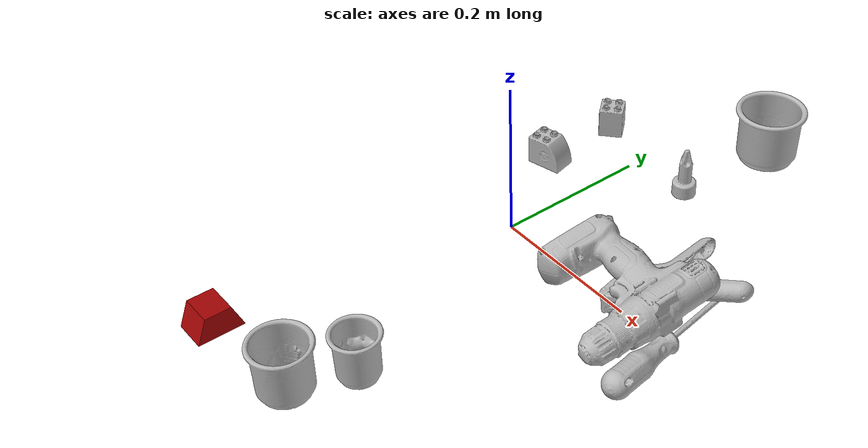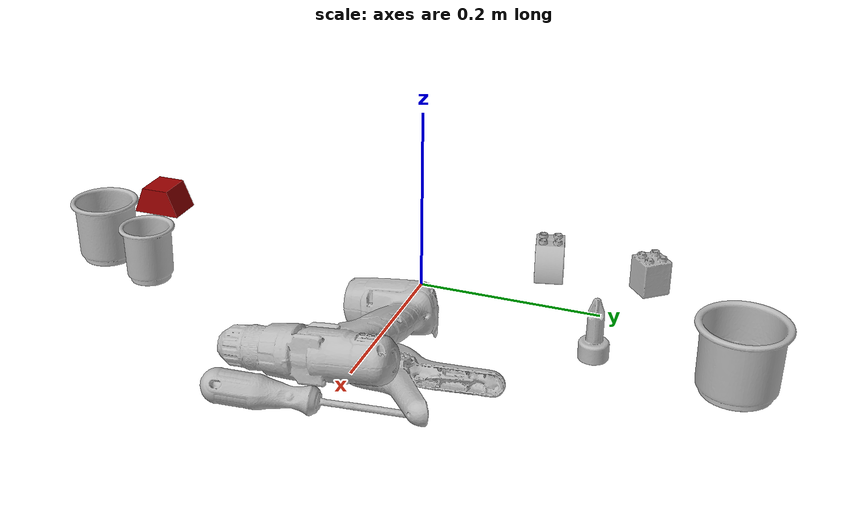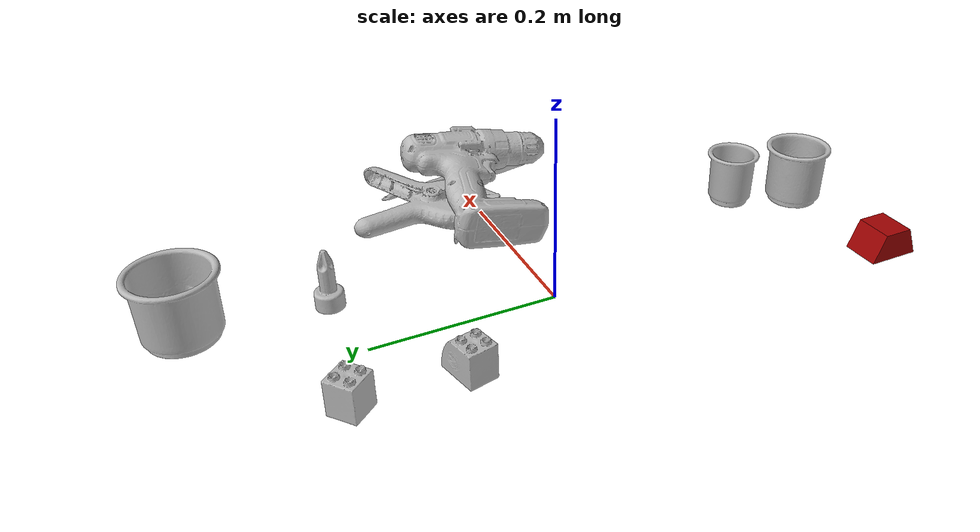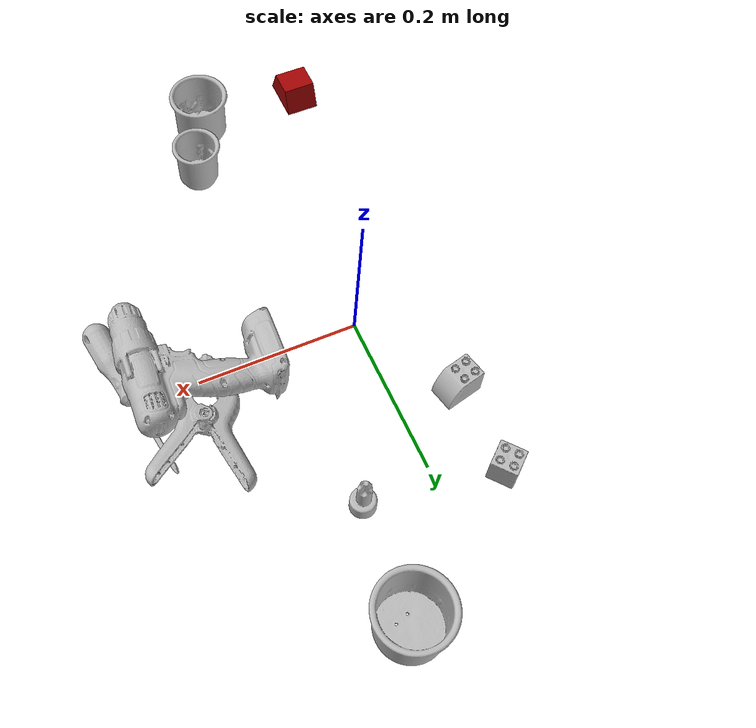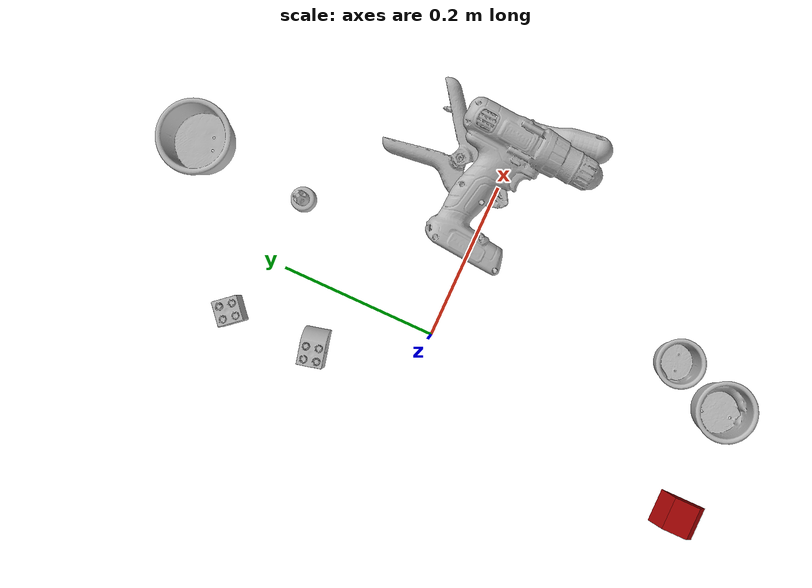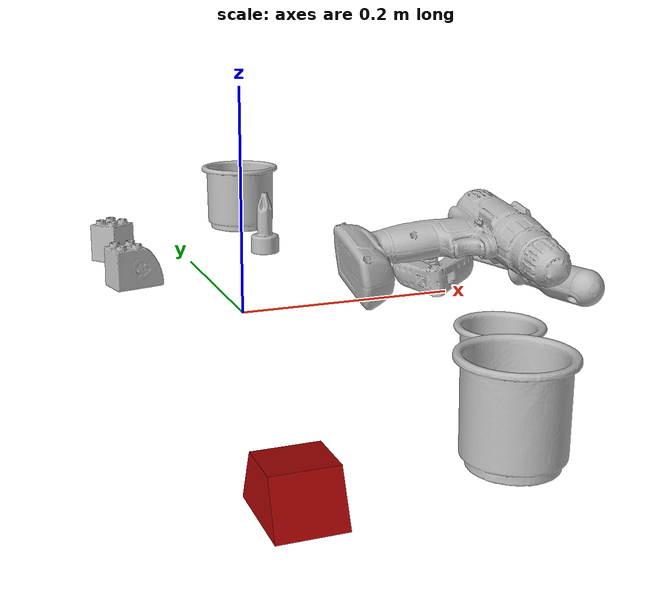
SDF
<sdf version="1.4">
  <world name="default">
    <light name="light1" type="point">
      <pose>0 0 1 0 0 0</pose>
      <diffuse>3 3 3 1</diffuse>
      <specular>3 3 3 1</specular>
    </light>
    <light name="light2" type="point">
      <pose>0 0.5 2 0 0 0</pose>
      <diffuse>1 1 1 1</diffuse>
      <specular>1 1 1 1</specular>
    </light>
    <light name="light3" type="point">
      <pose>0 0.5 2 0 0 0</pose>
      <diffuse>3 3 3 1</diffuse>
      <specular>3 3 3 1</specular>
    </light>
    <scene>
      <ambient>0.7 0.7 0.7</ambient>
    </scene>
    <model name="cup1">
      <link name="link_cup1">
        <collision name="default">
          <geometry>
            <mesh>
              <uri>model://b_cups/collision_meshes/collision.obj</uri>
              <scale>1.0 1.0 1.0</scale>
            </mesh>
          </geometry>
          <surface>
            <friction>
              <ode>
                <mu>0.5</mu>
                <mu2>0.5</mu2>
              </ode>
            </friction>
          <contact>
        <ode>
            <max_vel>0</max_vel>
            <min_depth>0.0001</min_depth>
            <kp>1e8</kp>
        </ode>
    </contact></surface>
        </collision>
        <visual name="default">
          <geometry>
            <mesh>
              <uri>model://b_cups/visual_meshes/visual.dae</uri>
              <scale>1.0 1.0 1.0</scale>
            </mesh>
          </geometry>
        </visual>
        <inertial>
          <mass>0.048613063991069794</mass>
          <pose>0.0005182003951631486 0.0018058597343042493 -0.0013381808530539274 0.11356326710502956 0.03872484102688303 -0.34569225342860055</pose>
          <inertia>
            <ixx>3.1820662e-05</ixx>
            <iyy>3.121653e-05</iyy>
            <izz>2.6776484e-05</izz>
            <ixy>0</ixy>
            <ixz>0</ixz>
            <iyz>0</iyz>
          </inertia>
        </inertial>
      </link>
      <pose>0.09381680190563202 -0.2871474027633667 0.03199610486626625 -0.00762731204567962 -0.003840448935472706 1.0296840317232892</pose>
    </model>
    <model name="cup2">
      <link name="link_cup2">
        <collision name="default">
          <geometry>
            <mesh>
              <uri>model://e_cups/collision_meshes/collision.obj</uri>
              <scale>1.0 1.0 1.0</scale>
            </mesh>
          </geometry>
          <surface>
            <friction>
              <ode>
                <mu>0.5</mu>
                <mu2>0.5</mu2>
              </ode>
            </friction>
          <contact>
        <ode>
            <max_vel>0</max_vel>
            <min_depth>0.0001</min_depth>
            <kp>1e8</kp>
        </ode>
    </contact></surface>
        </collision>
        <visual name="default">
          <geometry>
            <mesh>
              <uri>model://e_cups/visual_meshes/visual.dae</uri>
              <scale>1.0 1.0 1.0</scale>
            </mesh>
          </geometry>
        </visual>
        <inertial>
          <mass>0.07592208683490753</mass>
          <pose>0.0011355738388374448 0.002879784908145666 -0.003882972290739417 0.695241209711482 0.0876783799590152 -0.5235234031188288</pose>
          <inertia>
            <ixx>6.6944274e-05</ixx>
            <iyy>6.996636e-05</iyy>
            <izz>6.400647e-05</izz>
            <ixy>0</ixy>
            <ixz>0</ixz>
            <iyz>0</iyz>
          </inertia>
        </inertial>
      </link>
      <pose>0.06314246356487274 -0.3596925735473633 0.03559992462396622 1.6689837965025144e-05 -1.8570135757520453e-05 -1.0232161652720302</pose>
    </model>
    <model name="cup3">
      <link name="link_cup3">
        <collision name="default">
          <geometry>
            <mesh>
              <uri>model://h_cups/collision_meshes/collision.obj</uri>
              <scale>1.0 1.0 1.0</scale>
            </mesh>
          </geometry>
          <surface>
            <friction>
              <ode>
                <mu>0.5</mu>
                <mu2>0.5</mu2>
              </ode>
            </friction>
          <contact>
        <ode>
            <max_vel>0</max_vel>
            <min_depth>0.0001</min_depth>
            <kp>1e8</kp>
        </ode>
    </contact></surface>
        </collision>
        <visual name="default">
          <geometry>
            <mesh>
              <uri>model://h_cups/visual_meshes/visual.dae</uri>
              <scale>1.0 1.0 1.0</scale>
            </mesh>
          </geometry>
        </visual>
        <inertial>
          <mass>0.07054857164621353</mass>
          <pose>-2.7030857381760143e-05 0.0002301865170011297 -0.0018405391601845622 -0.024362378998248252 0.0654525662963329 0.12884761756284485</pose>
          <inertia>
            <ixx>9.1110225e-05</ixx>
            <iyy>9.002296e-05</iyy>
            <izz>9.5549614e-05</izz>
            <ixy>0</ixy>
            <ixz>0</ixz>
            <iyz>0</iyz>
          </inertia>
        </inertial>
      </link>
      <pose>0.09922626614570618 0.35383713245391846 0.0377579927444458 6.871819016200995e-08 -7.718485729005339e-09 1.8135474687917048</pose>
    </model>
    <model name="toy1">
      <link name="link_toy1">
        <collision name="default">
          <geometry>
            <mesh>
              <uri>model://f_lego_duplo/collision_meshes/collision.obj</uri>
              <scale>1.0 1.0 1.0</scale>
            </mesh>
          </geometry>
          <surface>
            <friction>
              <ode>
                <mu>0.5</mu>
                <mu2>0.5</mu2>
              </ode>
            </friction>
          <contact>
        <ode>
            <max_vel>0</max_vel>
            <min_depth>0.0001</min_depth>
            <kp>1e8</kp>
        </ode>
    </contact></surface>
        </collision>
        <visual name="default">
          <geometry>
            <mesh>
              <uri>model://f_lego_duplo/visual_meshes/visual.dae</uri>
              <scale>1.0 1.0 1.0</scale>
            </mesh>
          </geometry>
        </visual>
        <inertial>
          <mass>0.027637142688035965</mass>
          <pose>2.3694037736277096e-05 0.0001339315203949809 0.0018837873358279467 0.029838580482088747 -0.014425059949813135 -0.6756637855802661</pose>
          <inertia>
            <ixx>5.8398805e-06</ixx>
            <iyy>5.8919077e-06</iyy>
            <izz>5.069264e-06</izz>
            <ixy>0</ixy>
            <ixz>0</ixz>
            <iyz>0</iyz>
          </inertia>
        </inertial>
      </link>
      <pose>-0.07564951479434967 0.23724080622196198 0.02187100611627102 -1.0836147112793447e-06 1.6952270790027198e-06 0.70222496350192</pose>
    </model>
    <model name="toy2">
      <link name="link_toy2">
        <collision name="default">
          <geometry>
            <mesh>
              <uri>model://d_toy_airplane/collision_meshes/collision.obj</uri>
              <scale>1.0 1.0 1.0</scale>
            </mesh>
          </geometry>
          <surface>
            <friction>
              <ode>
                <mu>0.5</mu>
                <mu2>0.5</mu2>
              </ode>
            </friction>
          <contact>
        <ode>
            <max_vel>0</max_vel>
            <min_depth>0.0001</min_depth>
            <kp>1e8</kp>
        </ode>
    </contact></surface>
        </collision>
        <visual name="default">
          <geometry>
            <mesh>
              <uri>model://d_toy_airplane/visual_meshes/visual.dae</uri>
              <scale>1.0 1.0 1.0</scale>
            </mesh>
          </geometry>
        </visual>
        <inertial>
          <mass>0.017859498038887978</mass>
          <pose>9.410335042048246e-05 -5.809318827232346e-05 -0.011728094890713692 0.0002667298520076861 0.004679004392369758 0.5194091511239993</pose>
          <inertia>
            <ixx>5.35393e-06</ixx>
            <iyy>5.3579683e-06</iyy>
            <izz>1.6163864e-06</izz>
            <ixy>0</ixy>
            <ixz>0</ixz>
            <iyz>0</iyz>
          </inertia>
        </inertial>
      </link>
      <pose>0.08688313513994217 0.21282848715782166 0.033338699489831924 0.00011485068426919484 -8.047931100200147e-05 2.5137728167495674</pose>
    </model>
    <model name="toy3">
      <link name="link_toy3">
        <collision name="default">
          <geometry>
            <mesh>
              <uri>model://prism/collision_meshes/collision.obj</uri>
              <scale>0.5 0.5 0.5</scale>
            </mesh>
          </geometry>
          <surface>
            <friction>
              <ode>
                <mu>0.5</mu>
                <mu2>0.5</mu2>
              </ode>
            </friction>
          <contact>
        <ode>
            <max_vel>0</max_vel>
            <min_depth>0.0001</min_depth>
            <kp>1e8</kp>
        </ode>
    </contact></surface>
        </collision>
        <visual name="default">
          <geometry>
            <mesh>
              <uri>model://prism/visual_meshes/visual.dae</uri>
              <scale>0.5 0.5 0.5</scale>
            </mesh>
          </geometry>
        </visual>
        <inertial>
          <mass>0.04761093109846115</mass>
          <pose>-4.92679828312248e-05 -2.480786349678965e-07 -0.001693455153144896 0.0 0.006559181231804993 0.0</pose>
          <inertia>
            <ixx>1.074207e-05</ixx>
            <iyy>1.2981929e-05</iyy>
            <izz>1.590131e-05</izz>
            <ixy>0</ixy>
            <ixz>0</ixz>
            <iyz>0</iyz>
          </inertia>
        </inertial>
      </link>
      <pose>-0.07757608592510223 -0.3706757724285126 0.016084998846054077 2.2391653360059364e-08 2.1730791406470717e-08 1.5709013746416207</pose>
    </model>
    <model name="toy4">
      <link name="link_toy4">
        <collision name="default">
          <geometry>
            <mesh>
              <uri>model://d_lego_duplo/collision_meshes/collision.obj</uri>
              <scale>1.0 1.0 1.0</scale>
            </mesh>
          </geometry>
          <surface>
            <friction>
              <ode>
                <mu>0.5</mu>
                <mu2>0.5</mu2>
              </ode>
            </friction>
          <contact>
        <ode>
            <max_vel>0</max_vel>
            <min_depth>0.0001</min_depth>
            <kp>1e8</kp>
        </ode>
    </contact></surface>
        </collision>
        <visual name="default">
          <geometry>
            <mesh>
              <uri>model://d_lego_duplo/visual_meshes/visual.dae</uri>
              <scale>1.0 1.0 1.0</scale>
            </mesh>
          </geometry>
        </visual>
        <inertial>
          <mass>0.06000049039721489</mass>
          <pose>0.0028305640444159508 0.0001636611996218562 0.000858980929479003 0.08010949527318252 -0.38355210287845315 0.0010297055105996263</pose>
          <inertia>
            <ixx>1.1615211e-05</ixx>
            <iyy>1.6485134e-05</iyy>
            <izz>1.5897598e-05</izz>
            <ixy>0</ixy>
            <ixz>0</ixz>
            <iyz>0</iyz>
          </inertia>
        </inertial>
      </link>
      <pose>-0.07329881936311722 0.12489476054906845 0.021739788353443146 -3.219362451389178e-05 -3.1309634285764795e-05 -2.9065280433676883</pose>
    </model>
    <model name="hardware1">
      <link name="link_hardware1">
        <collision name="default">
          <geometry>
            <mesh>
              <uri>model://phillips_screwdriver/collision_meshes/collision.obj</uri>
              <scale>1.0 1.0 1.0</scale>
            </mesh>
          </geometry>
          <surface>
            <friction>
              <ode>
                <mu>0.5</mu>
                <mu2>0.5</mu2>
              </ode>
            </friction>
          <contact>
        <ode>
            <max_vel>0</max_vel>
            <min_depth>0.0001</min_depth>
            <kp>1e8</kp>
        </ode>
    </contact></surface>
        </collision>
        <visual name="default">
          <geometry>
            <mesh>
              <uri>model://phillips_screwdriver/visual_meshes/visual.dae</uri>
              <scale>1.0 1.0 1.0</scale>
            </mesh>
          </geometry>
        </visual>
        <inertial>
          <mass>0.11704345047473907</mass>
          <pose>-0.04777182638645172 0.0010362302418798208 -0.0004555549821816385 -0.1571668982332543 0.0058509943133797405 -0.002156735283865719</pose>
          <inertia>
            <ixx>1.3751404e-05</ixx>
            <iyy>0.00017241857</iyy>
            <izz>0.0001725651</izz>
            <ixy>0</ixy>
            <ixz>0</ixz>
            <iyz>0</iyz>
          </inertia>
        </inertial>
      </link>
      <pose>0.2792005240917206 -0.006752397865056992 0.01650143787264824 -0.7294109506364287 0.0380163646994771 1.729653247252156</pose>
    </model>
    <model name="hardware2">
      <link name="link_hardware2">
        <collision name="default">
          <geometry>
            <mesh>
              <uri>model://large_clamp/collision_meshes/collision.obj</uri>
              <scale>1.0 1.0 1.0</scale>
            </mesh>
          </geometry>
          <surface>
            <friction>
              <ode>
                <mu>0.5</mu>
                <mu2>0.5</mu2>
              </ode>
            </friction>
          <contact>
        <ode>
            <max_vel>0</max_vel>
            <min_depth>0.0001</min_depth>
            <kp>1e8</kp>
        </ode>
    </contact></surface>
        </collision>
        <visual name="default">
          <geometry>
            <mesh>
              <uri>model://large_clamp/visual_meshes/visual.dae</uri>
              <scale>1.0 1.0 1.0</scale>
            </mesh>
          </geometry>
        </visual>
        <inertial>
          <mass>0.18953841924667358</mass>
          <pose>0.00636935792863369 0.0003585682134144008 -0.00018398056272417307 -0.002133075536327147 0.009671586607470332 0.026633167384546762</pose>
          <inertia>
            <ixx>0.00016722476</ixx>
            <iyy>0.0003175689</iyy>
            <izz>0.00045940367</izz>
            <ixy>0</ixy>
            <ixz>0</ixz>
            <iyz>0</iyz>
          </inertia>
        </inertial>
      </link>
      <pose>0.21356278657913208 0.057695645838975906 0.019810114055871964 0.1518833459738998 0.06670954124495435 -1.9850876971203346</pose>
    </model>
    <model name="hardware3">
      <link name="link_hardware3">
        <collision name="default">
          <geometry>
            <mesh>
              <uri>model://power_drill/collision_meshes/collision.obj</uri>
              <scale>1.0 1.0 1.0</scale>
            </mesh>
          </geometry>
          <surface>
            <friction>
              <ode>
                <mu>0.5</mu>
                <mu2>0.5</mu2>
              </ode>
            </friction>
          <contact>
        <ode>
            <max_vel>0</max_vel>
            <min_depth>0.0001</min_depth>
            <kp>1e8</kp>
        </ode>
    </contact></surface>
        </collision>
        <visual name="default">
          <geometry>
            <mesh>
              <uri>model://power_drill/visual_meshes/visual.dae</uri>
              <scale>1.0 1.0 1.0</scale>
            </mesh>
          </geometry>
        </visual>
        <inertial>
          <mass>0.5207164287567139</mass>
          <pose>-0.014780543744564056 0.014369428157806396 0.0012414171360433102 0.004609162650930739 0.004073022346756156 -0.183626968168983</pose>
          <inertia>
            <ixx>0.0021219437</ixx>
            <iyy>0.00083487434</iyy>
            <izz>0.002802402</izz>
            <ixy>0</ixy>
            <ixz>0</ixz>
            <iyz>0</iyz>
          </inertia>
        </inertial>
      </link>
      <pose>0.1937762200832367 -0.013782640919089317 0.04098768159747124 0.1486614510918609 0.1351251559186329 -1.634983982973329</pose>
    </model>
  <physics type="ode">
      <max_contacts>50</max_contacts>
      <ode>
        <solver>
          <type>quick</type>
          <iters>75</iters>
        </solver>
        <constraints>
          <contact_max_correcting_vel>0</contact_max_correcting_vel>
          <contact_surface_layer>0</contact_surface_layer>
        </constraints>
      </ode>
    </physics></world>
</sdf>
